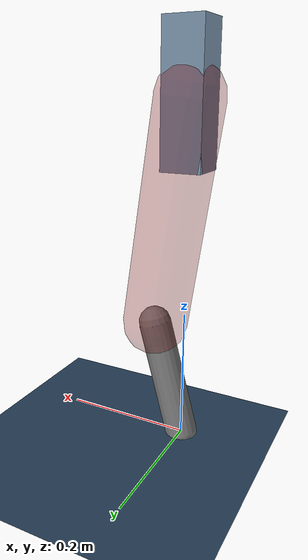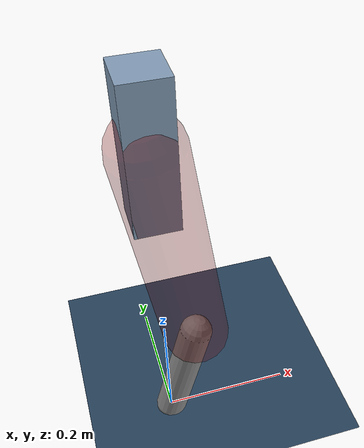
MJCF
<mujoco model="Hopper2D">
	<compiler inertiafromgeom="true" angle="radian" />
	<option timestep="0.001" integrator="implicit" cone="elliptic" solver="Newton" tolerance="1e-10" />

	<default>
		<geom contype="1" conaffinity="1" condim="3" friction="2 0.005 0.0001" solref="0.005 1" />
		<joint limited="true" damping="0.1" />
	</default>

	<asset>
		<texture name="skybox" type="skybox" builtin="gradient" rgb1=".4 .6 .8" rgb2="0 0 0" width="800" height="800" />
		<texture name="grid" type="2d" builtin="checker" rgb1=".1 .2 .3" rgb2=".2 .3 .4" width="300" height="300" mark="edge" markrgb=".2 .3 .4" />
		<material name="ground" texture="grid" texrepeat="1 1" texuniform="true" reflectance="0.1" />
		<material name="leg" rgba="0.5 0.6 0.7 1" />
	</asset>

	<worldbody>

		<geom name="floor" type="plane" size="5 5 0.25" material="ground" />

		<light directional="false" diffuse="0.8 0.8 0.8" specular="0.3 0.3 0.3" pos="0 0 2" dir="0 0 -1" />
		<light mode="targetbodycom" target="base" directional="false" diffuse="0.8 0.8 0.8" specular="0.3 0.3 0.3" pos="0 0 2" dir="0 0 -1" />

		<camera name="fixed" pos="0 -2 1" xyaxes="1 0 0 0 0 1" />
		<camera name="tracking" mode="trackcom" pos="0 -3 1" />

		<body name="root" pos="0 0 0.5157893988476602">
			<joint name="slide_x" type="slide" axis="1 0 0" range="-100 100" />
			<joint name="slide_z" type="slide" axis="0 0 1" range="0 10" />

			<body name="base" pos="0 0 0">
				<geom name="torso" type="box" size="0.03 0.03 0.1" mass="3.128" material="leg" />

				<body name="link1" pos="0 0 0" euler="0 1.4270494630902824 0">
					<joint type="hinge" axis="0 -1 0" pos="0 0 0" name="hinge1" limited="true" range="-3.14 3.14" stiffness="0" damping="0.1" />
					<geom name="thigh" type="capsule" fromto="0 0 0 0.33994640960489997 0 0" size="0.05" rgba="0.5 0 0 0.3" mass="1.0985499468937199" />

					<body name="link2" pos="0.33994640960489997 0 0" euler="0 0.4088813153511534 0">
						<joint type="hinge" axis="0 -1 0" pos="0 0 0" name="hinge2" limited="true" range="-3.14 3.14" stiffness="0" damping="0.1" />
						<geom name="shank" type="capsule" fromto="0 0 0 0.1858429892427602 0 0" size="0.025" mass="0.38887439139420815" />

					</body>
				</body>
			</body>
		</body>
	</worldbody>

	<actuator>
		<motor name="torque1" joint="hinge1" ctrlrange="-95.30113628392662 95.30113628392662" ctrllimited="true" gear="1" />
		<motor name="torque2" joint="hinge2" ctrlrange="-138.31342543844784 138.31342543844784" ctrllimited="true" gear="1" />
	</actuator>
</mujoco>
